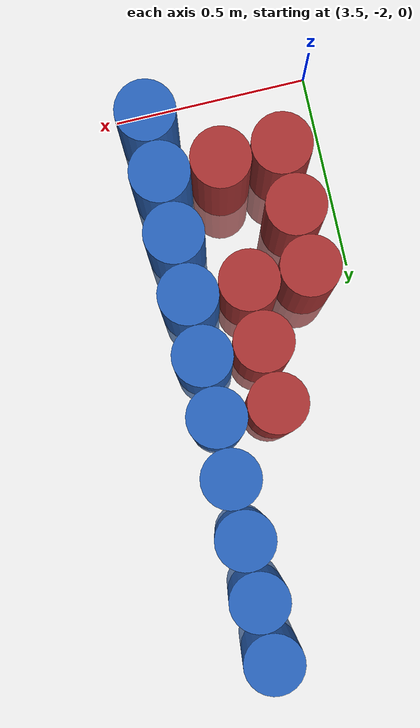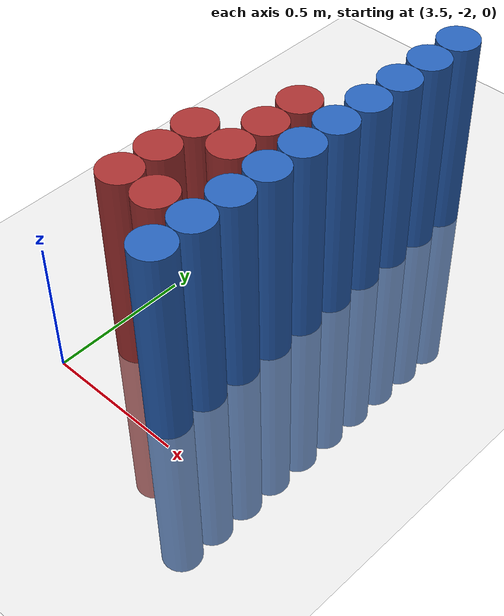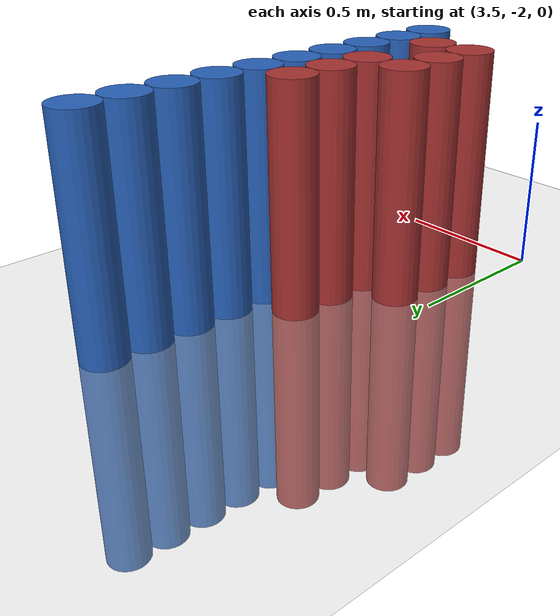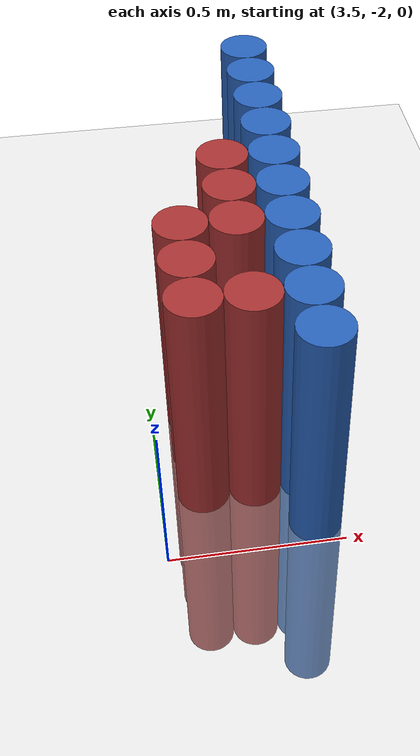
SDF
<sdf version="1.6">
 <world name="default">
  <model name="ground_plane">
   <static>1</static>
   <link name="link">
    <collision name="collision">
     <geometry><plane><normal>0 0 1</normal><size>100 100</size></plane></geometry>
     <surface><friction><ode><mu>100</mu><mu2>50</mu2></ode></friction></surface>
    </collision>
    <visual name="visual">
     <cast_shadows>0</cast_shadows>
     <geometry><plane><normal>0 0 1</normal><size>100 100</size></plane></geometry>
     <material>
      <script><uri>file://media/materials/scripts/gazebo.material</uri><name>Gazebo/Grey</name></script>
     </material>
    </visual>
   </link>
  </model>
  <model name="unit_cylinder_88">
   <static>1</static>
   <pose>3.925000 -1.925000 0.000000 0.000000 0.000000 0.000000</pose>
   <link name="link">
    <inertial>
     <mass>1</mass>
     <inertia><ixx>0.145833</ixx><ixy>0</ixy><ixz>0</ixz><iyy>0.145833</iyy><iyz>0</iyz><izz>0.125</izz></inertia>
    </inertial>
    <collision name="collision">
     <geometry><cylinder><radius>0.075000</radius><length>1.5</length></cylinder></geometry>
    </collision>
    <visual name="visual">
     <geometry><cylinder><radius>0.075000</radius><length>1.5</length></cylinder></geometry>
     <material>
      <ambient>0.152000 0.379000 0.720000 1</ambient>
      <diffuse>0.152000 0.379000 0.720000 1</diffuse>
     </material>
     <material>
      <script><name>Gazebo/Grey</name><uri>file://media/materials/scripts/gazebo.material</uri></script>
     </material>
    </visual>
   </link>
  </model>
  <model name="unit_cylinder_90">
   <static>1</static>
   <pose>3.925000 -1.775000 0.000000 0.000000 0.000000 0.000000</pose>
   <link name="link">
    <inertial>
     <mass>1</mass>
     <inertia><ixx>0.145833</ixx><ixy>0</ixy><ixz>0</ixz><iyy>0.145833</iyy><iyz>0</iyz><izz>0.125</izz></inertia>
    </inertial>
    <collision name="collision">
     <geometry><cylinder><radius>0.075000</radius><length>1.5</length></cylinder></geometry>
    </collision>
    <visual name="visual">
     <geometry><cylinder><radius>0.075000</radius><length>1.5</length></cylinder></geometry>
     <material>
      <ambient>0.152000 0.379000 0.720000 1</ambient>
      <diffuse>0.152000 0.379000 0.720000 1</diffuse>
     </material>
     <material>
      <script><name>Gazebo/Grey</name><uri>file://media/materials/scripts/gazebo.material</uri></script>
     </material>
    </visual>
   </link>
  </model>
  <model name="unit_cylinder_92">
   <static>1</static>
   <pose>3.925000 -1.625000 0.000000 0.000000 0.000000 0.000000</pose>
   <link name="link">
    <inertial>
     <mass>1</mass>
     <inertia><ixx>0.145833</ixx><ixy>0</ixy><ixz>0</ixz><iyy>0.145833</iyy><iyz>0</iyz><izz>0.125</izz></inertia>
    </inertial>
    <collision name="collision">
     <geometry><cylinder><radius>0.075000</radius><length>1.5</length></cylinder></geometry>
    </collision>
    <visual name="visual">
     <geometry><cylinder><radius>0.075000</radius><length>1.5</length></cylinder></geometry>
     <material>
      <ambient>0.152000 0.379000 0.720000 1</ambient>
      <diffuse>0.152000 0.379000 0.720000 1</diffuse>
     </material>
     <material>
      <script><name>Gazebo/Grey</name><uri>file://media/materials/scripts/gazebo.material</uri></script>
     </material>
    </visual>
   </link>
  </model>
  <model name="unit_cylinder_94">
   <static>1</static>
   <pose>3.925000 -1.475000 0.000000 0.000000 0.000000 0.000000</pose>
   <link name="link">
    <inertial>
     <mass>1</mass>
     <inertia><ixx>0.145833</ixx><ixy>0</ixy><ixz>0</ixz><iyy>0.145833</iyy><iyz>0</iyz><izz>0.125</izz></inertia>
    </inertial>
    <collision name="collision">
     <geometry><cylinder><radius>0.075000</radius><length>1.5</length></cylinder></geometry>
    </collision>
    <visual name="visual">
     <geometry><cylinder><radius>0.075000</radius><length>1.5</length></cylinder></geometry>
     <material>
      <ambient>0.152000 0.379000 0.720000 1</ambient>
      <diffuse>0.152000 0.379000 0.720000 1</diffuse>
     </material>
     <material>
      <script><name>Gazebo/Grey</name><uri>file://media/materials/scripts/gazebo.material</uri></script>
     </material>
    </visual>
   </link>
  </model>
  <model name="unit_cylinder_96">
   <static>1</static>
   <pose>3.925000 -1.325000 0.000000 0.000000 0.000000 0.000000</pose>
   <link name="link">
    <inertial>
     <mass>1</mass>
     <inertia><ixx>0.145833</ixx><ixy>0</ixy><ixz>0</ixz><iyy>0.145833</iyy><iyz>0</iyz><izz>0.125</izz></inertia>
    </inertial>
    <collision name="collision">
     <geometry><cylinder><radius>0.075000</radius><length>1.5</length></cylinder></geometry>
    </collision>
    <visual name="visual">
     <geometry><cylinder><radius>0.075000</radius><length>1.5</length></cylinder></geometry>
     <material>
      <ambient>0.152000 0.379000 0.720000 1</ambient>
      <diffuse>0.152000 0.379000 0.720000 1</diffuse>
     </material>
     <material>
      <script><name>Gazebo/Grey</name><uri>file://media/materials/scripts/gazebo.material</uri></script>
     </material>
    </visual>
   </link>
  </model>
  <model name="unit_cylinder_98">
   <static>1</static>
   <pose>3.925000 -1.175000 0.000000 0.000000 0.000000 0.000000</pose>
   <link name="link">
    <inertial>
     <mass>1</mass>
     <inertia><ixx>0.145833</ixx><ixy>0</ixy><ixz>0</ixz><iyy>0.145833</iyy><iyz>0</iyz><izz>0.125</izz></inertia>
    </inertial>
    <collision name="collision">
     <geometry><cylinder><radius>0.075000</radius><length>1.5</length></cylinder></geometry>
    </collision>
    <visual name="visual">
     <geometry><cylinder><radius>0.075000</radius><length>1.5</length></cylinder></geometry>
     <material>
      <ambient>0.152000 0.379000 0.720000 1</ambient>
      <diffuse>0.152000 0.379000 0.720000 1</diffuse>
     </material>
     <material>
      <script><name>Gazebo/Grey</name><uri>file://media/materials/scripts/gazebo.material</uri></script>
     </material>
    </visual>
   </link>
  </model>
  <model name="unit_cylinder_100">
   <static>1</static>
   <pose>3.925000 -1.025000 0.000000 0.000000 0.000000 0.000000</pose>
   <link name="link">
    <inertial>
     <mass>1</mass>
     <inertia><ixx>0.145833</ixx><ixy>0</ixy><ixz>0</ixz><iyy>0.145833</iyy><iyz>0</iyz><izz>0.125</izz></inertia>
    </inertial>
    <collision name="collision">
     <geometry><cylinder><radius>0.075000</radius><length>1.5</length></cylinder></geometry>
    </collision>
    <visual name="visual">
     <geometry><cylinder><radius>0.075000</radius><length>1.5</length></cylinder></geometry>
     <material>
      <ambient>0.152000 0.379000 0.720000 1</ambient>
      <diffuse>0.152000 0.379000 0.720000 1</diffuse>
     </material>
     <material>
      <script><name>Gazebo/Grey</name><uri>file://media/materials/scripts/gazebo.material</uri></script>
     </material>
    </visual>
   </link>
  </model>
  <model name="unit_cylinder_102">
   <static>1</static>
   <pose>3.925000 -0.875000 0.000000 0.000000 0.000000 0.000000</pose>
   <link name="link">
    <inertial>
     <mass>1</mass>
     <inertia><ixx>0.145833</ixx><ixy>0</ixy><ixz>0</ixz><iyy>0.145833</iyy><iyz>0</iyz><izz>0.125</izz></inertia>
    </inertial>
    <collision name="collision">
     <geometry><cylinder><radius>0.075000</radius><length>1.5</length></cylinder></geometry>
    </collision>
    <visual name="visual">
     <geometry><cylinder><radius>0.075000</radius><length>1.5</length></cylinder></geometry>
     <material>
      <ambient>0.152000 0.379000 0.720000 1</ambient>
      <diffuse>0.152000 0.379000 0.720000 1</diffuse>
     </material>
     <material>
      <script><name>Gazebo/Grey</name><uri>file://media/materials/scripts/gazebo.material</uri></script>
     </material>
    </visual>
   </link>
  </model>
  <model name="unit_cylinder_104">
   <static>1</static>
   <pose>3.925000 -0.725000 0.000000 0.000000 0.000000 0.000000</pose>
   <link name="link">
    <inertial>
     <mass>1</mass>
     <inertia><ixx>0.145833</ixx><ixy>0</ixy><ixz>0</ixz><iyy>0.145833</iyy><iyz>0</iyz><izz>0.125</izz></inertia>
    </inertial>
    <collision name="collision">
     <geometry><cylinder><radius>0.075000</radius><length>1.5</length></cylinder></geometry>
    </collision>
    <visual name="visual">
     <geometry><cylinder><radius>0.075000</radius><length>1.5</length></cylinder></geometry>
     <material>
      <ambient>0.152000 0.379000 0.720000 1</ambient>
      <diffuse>0.152000 0.379000 0.720000 1</diffuse>
     </material>
     <material>
      <script><name>Gazebo/Grey</name><uri>file://media/materials/scripts/gazebo.material</uri></script>
     </material>
    </visual>
   </link>
  </model>
  <model name="unit_cylinder_106">
   <static>1</static>
   <pose>3.925000 -0.575000 0.000000 0.000000 0.000000 0.000000</pose>
   <link name="link">
    <inertial>
     <mass>1</mass>
     <inertia><ixx>0.145833</ixx><ixy>0</ixy><ixz>0</ixz><iyy>0.145833</iyy><iyz>0</iyz><izz>0.125</izz></inertia>
    </inertial>
    <collision name="collision">
     <geometry><cylinder><radius>0.075000</radius><length>1.5</length></cylinder></geometry>
    </collision>
    <visual name="visual">
     <geometry><cylinder><radius>0.075000</radius><length>1.5</length></cylinder></geometry>
     <material>
      <ambient>0.152000 0.379000 0.720000 1</ambient>
      <diffuse>0.152000 0.379000 0.720000 1</diffuse>
     </material>
     <material>
      <script><name>Gazebo/Grey</name><uri>file://media/materials/scripts/gazebo.material</uri></script>
     </material>
    </visual>
   </link>
  </model>
  <model name="unit_cylinder_460">
   <static>1</static>
   <pose>3.625000 -1.775000 0.000000 0.000000 0.000000 0.000000</pose>
   <link name="link">
    <inertial>
     <mass>1</mass>
     <inertia><ixx>0.145833</ixx><ixy>0</ixy><ixz>0</ixz><iyy>0.145833</iyy><iyz>0</iyz><izz>0.125</izz></inertia>
    </inertial>
    <collision name="collision">
     <geometry><cylinder><radius>0.075000</radius><length>1.5</length></cylinder></geometry>
    </collision>
    <visual name="visual">
     <geometry><cylinder><radius>0.075000</radius><length>1.5</length></cylinder></geometry>
     <material>
      <ambient>0.648000 0.192000 0.192000 1</ambient>
      <diffuse>0.648000 0.192000 0.192000 1</diffuse>
     </material>
     <material>
      <script><name>Gazebo/Grey</name><uri>file://media/materials/scripts/gazebo.material</uri></script>
     </material>
    </visual>
   </link>
  </model>
  <model name="unit_cylinder_461">
   <static>1</static>
   <pose>3.625000 -1.625000 0.000000 0.000000 0.000000 0.000000</pose>
   <link name="link">
    <inertial>
     <mass>1</mass>
     <inertia><ixx>0.145833</ixx><ixy>0</ixy><ixz>0</ixz><iyy>0.145833</iyy><iyz>0</iyz><izz>0.125</izz></inertia>
    </inertial>
    <collision name="collision">
     <geometry><cylinder><radius>0.075000</radius><length>1.5</length></cylinder></geometry>
    </collision>
    <visual name="visual">
     <geometry><cylinder><radius>0.075000</radius><length>1.5</length></cylinder></geometry>
     <material>
      <ambient>0.648000 0.192000 0.192000 1</ambient>
      <diffuse>0.648000 0.192000 0.192000 1</diffuse>
     </material>
     <material>
      <script><name>Gazebo/Grey</name><uri>file://media/materials/scripts/gazebo.material</uri></script>
     </material>
    </visual>
   </link>
  </model>
  <model name="unit_cylinder_462">
   <static>1</static>
   <pose>3.625000 -1.475000 0.000000 0.000000 0.000000 0.000000</pose>
   <link name="link">
    <inertial>
     <mass>1</mass>
     <inertia><ixx>0.145833</ixx><ixy>0</ixy><ixz>0</ixz><iyy>0.145833</iyy><iyz>0</iyz><izz>0.125</izz></inertia>
    </inertial>
    <collision name="collision">
     <geometry><cylinder><radius>0.075000</radius><length>1.5</length></cylinder></geometry>
    </collision>
    <visual name="visual">
     <geometry><cylinder><radius>0.075000</radius><length>1.5</length></cylinder></geometry>
     <material>
      <ambient>0.648000 0.192000 0.192000 1</ambient>
      <diffuse>0.648000 0.192000 0.192000 1</diffuse>
     </material>
     <material>
      <script><name>Gazebo/Grey</name><uri>file://media/materials/scripts/gazebo.material</uri></script>
     </material>
    </visual>
   </link>
  </model>
  <model name="unit_cylinder_467">
   <static>1</static>
   <pose>3.775000 -1.775000 0.000000 0.000000 0.000000 0.000000</pose>
   <link name="link">
    <inertial>
     <mass>1</mass>
     <inertia><ixx>0.145833</ixx><ixy>0</ixy><ixz>0</ixz><iyy>0.145833</iyy><iyz>0</iyz><izz>0.125</izz></inertia>
    </inertial>
    <collision name="collision">
     <geometry><cylinder><radius>0.075000</radius><length>1.5</length></cylinder></geometry>
    </collision>
    <visual name="visual">
     <geometry><cylinder><radius>0.075000</radius><length>1.5</length></cylinder></geometry>
     <material>
      <ambient>0.648000 0.192000 0.192000 1</ambient>
      <diffuse>0.648000 0.192000 0.192000 1</diffuse>
     </material>
     <material>
      <script><name>Gazebo/Grey</name><uri>file://media/materials/scripts/gazebo.material</uri></script>
     </material>
    </visual>
   </link>
  </model>
  <model name="unit_cylinder_468">
   <static>1</static>
   <pose>3.775000 -1.475000 0.000000 0.000000 0.000000 0.000000</pose>
   <link name="link">
    <inertial>
     <mass>1</mass>
     <inertia><ixx>0.145833</ixx><ixy>0</ixy><ixz>0</ixz><iyy>0.145833</iyy><iyz>0</iyz><izz>0.125</izz></inertia>
    </inertial>
    <collision name="collision">
     <geometry><cylinder><radius>0.075000</radius><length>1.5</length></cylinder></geometry>
    </collision>
    <visual name="visual">
     <geometry><cylinder><radius>0.075000</radius><length>1.5</length></cylinder></geometry>
     <material>
      <ambient>0.648000 0.192000 0.192000 1</ambient>
      <diffuse>0.648000 0.192000 0.192000 1</diffuse>
     </material>
     <material>
      <script><name>Gazebo/Grey</name><uri>file://media/materials/scripts/gazebo.material</uri></script>
     </material>
    </visual>
   </link>
  </model>
  <model name="unit_cylinder_469">
   <static>1</static>
   <pose>3.775000 -1.325000 0.000000 0.000000 0.000000 0.000000</pose>
   <link name="link">
    <inertial>
     <mass>1</mass>
     <inertia><ixx>0.145833</ixx><ixy>0</ixy><ixz>0</ixz><iyy>0.145833</iyy><iyz>0</iyz><izz>0.125</izz></inertia>
    </inertial>
    <collision name="collision">
     <geometry><cylinder><radius>0.075000</radius><length>1.5</length></cylinder></geometry>
    </collision>
    <visual name="visual">
     <geometry><cylinder><radius>0.075000</radius><length>1.5</length></cylinder></geometry>
     <material>
      <ambient>0.648000 0.192000 0.192000 1</ambient>
      <diffuse>0.648000 0.192000 0.192000 1</diffuse>
     </material>
     <material>
      <script><name>Gazebo/Grey</name><uri>file://media/materials/scripts/gazebo.material</uri></script>
     </material>
    </visual>
   </link>
  </model>
  <model name="unit_cylinder_470">
   <static>1</static>
   <pose>3.775000 -1.175000 0.000000 0.000000 0.000000 0.000000</pose>
   <link name="link">
    <inertial>
     <mass>1</mass>
     <inertia><ixx>0.145833</ixx><ixy>0</ixy><ixz>0</ixz><iyy>0.145833</iyy><iyz>0</iyz><izz>0.125</izz></inertia>
    </inertial>
    <collision name="collision">
     <geometry><cylinder><radius>0.075000</radius><length>1.5</length></cylinder></geometry>
    </collision>
    <visual name="visual">
     <geometry><cylinder><radius>0.075000</radius><length>1.5</length></cylinder></geometry>
     <material>
      <ambient>0.648000 0.192000 0.192000 1</ambient>
      <diffuse>0.648000 0.192000 0.192000 1</diffuse>
     </material>
     <material>
      <script><name>Gazebo/Grey</name><uri>file://media/materials/scripts/gazebo.material</uri></script>
     </material>
    </visual>
   </link>
  </model>
  <model name="unit_cylinder_493">
   <static>1</static>
   <pose>3.925000 -1.925000 0.000000 0.000000 0.000000 0.000000</pose>
   <link name="link">
    <inertial>
     <mass>1</mass>
     <inertia><ixx>0.145833</ixx><ixy>0</ixy><ixz>0</ixz><iyy>0.145833</iyy><iyz>0</iyz><izz>0.125</izz></inertia>
    </inertial>
    <collision name="collision">
     <geometry><cylinder><radius>0.075000</radius><length>1.5</length></cylinder></geometry>
    </collision>
    <visual name="visual">
     <geometry><cylinder><radius>0.075000</radius><length>1.5</length></cylinder></geometry>
     <material>
      <ambient>0.152000 0.379000 0.720000 1</ambient>
      <diffuse>0.152000 0.379000 0.720000 1</diffuse>
     </material>
     <material>
      <script><name>Gazebo/Grey</name><uri>file://media/materials/scripts/gazebo.material</uri></script>
     </material>
    </visual>
   </link>
  </model>
  <model name="unit_cylinder_494">
   <static>1</static>
   <pose>3.925000 -1.775000 0.000000 0.000000 0.000000 0.000000</pose>
   <link name="link">
    <inertial>
     <mass>1</mass>
     <inertia><ixx>0.145833</ixx><ixy>0</ixy><ixz>0</ixz><iyy>0.145833</iyy><iyz>0</iyz><izz>0.125</izz></inertia>
    </inertial>
    <collision name="collision">
     <geometry><cylinder><radius>0.075000</radius><length>1.5</length></cylinder></geometry>
    </collision>
    <visual name="visual">
     <geometry><cylinder><radius>0.075000</radius><length>1.5</length></cylinder></geometry>
     <material>
      <ambient>0.152000 0.379000 0.720000 1</ambient>
      <diffuse>0.152000 0.379000 0.720000 1</diffuse>
     </material>
     <material>
      <script><name>Gazebo/Grey</name><uri>file://media/materials/scripts/gazebo.material</uri></script>
     </material>
    </visual>
   </link>
  </model>
  <model name="unit_cylinder_495">
   <static>1</static>
   <pose>3.925000 -1.625000 0.000000 0.000000 0.000000 0.000000</pose>
   <link name="link">
    <inertial>
     <mass>1</mass>
     <inertia><ixx>0.145833</ixx><ixy>0</ixy><ixz>0</ixz><iyy>0.145833</iyy><iyz>0</iyz><izz>0.125</izz></inertia>
    </inertial>
    <collision name="collision">
     <geometry><cylinder><radius>0.075000</radius><length>1.5</length></cylinder></geometry>
    </collision>
    <visual name="visual">
     <geometry><cylinder><radius>0.075000</radius><length>1.5</length></cylinder></geometry>
     <material>
      <ambient>0.152000 0.379000 0.720000 1</ambient>
      <diffuse>0.152000 0.379000 0.720000 1</diffuse>
     </material>
     <material>
      <script><name>Gazebo/Grey</name><uri>file://media/materials/scripts/gazebo.material</uri></script>
     </material>
    </visual>
   </link>
  </model>
  <model name="unit_cylinder_496">
   <static>1</static>
   <pose>3.925000 -1.475000 0.000000 0.000000 0.000000 0.000000</pose>
   <link name="link">
    <inertial>
     <mass>1</mass>
     <inertia><ixx>0.145833</ixx><ixy>0</ixy><ixz>0</ixz><iyy>0.145833</iyy><iyz>0</iyz><izz>0.125</izz></inertia>
    </inertial>
    <collision name="collision">
     <geometry><cylinder><radius>0.075000</radius><length>1.5</length></cylinder></geometry>
    </collision>
    <visual name="visual">
     <geometry><cylinder><radius>0.075000</radius><length>1.5</length></cylinder></geometry>
     <material>
      <ambient>0.152000 0.379000 0.720000 1</ambient>
      <diffuse>0.152000 0.379000 0.720000 1</diffuse>
     </material>
     <material>
      <script><name>Gazebo/Grey</name><uri>file://media/materials/scripts/gazebo.material</uri></script>
     </material>
    </visual>
   </link>
  </model>
  <model name="unit_cylinder_497">
   <static>1</static>
   <pose>3.925000 -1.325000 0.000000 0.000000 0.000000 0.000000</pose>
   <link name="link">
    <inertial>
     <mass>1</mass>
     <inertia><ixx>0.145833</ixx><ixy>0</ixy><ixz>0</ixz><iyy>0.145833</iyy><iyz>0</iyz><izz>0.125</izz></inertia>
    </inertial>
    <collision name="collision">
     <geometry><cylinder><radius>0.075000</radius><length>1.5</length></cylinder></geometry>
    </collision>
    <visual name="visual">
     <geometry><cylinder><radius>0.075000</radius><length>1.5</length></cylinder></geometry>
     <material>
      <ambient>0.152000 0.379000 0.720000 1</ambient>
      <diffuse>0.152000 0.379000 0.720000 1</diffuse>
     </material>
     <material>
      <script><name>Gazebo/Grey</name><uri>file://media/materials/scripts/gazebo.material</uri></script>
     </material>
    </visual>
   </link>
  </model>
  <model name="unit_cylinder_498">
   <static>1</static>
   <pose>3.925000 -1.175000 0.000000 0.000000 0.000000 0.000000</pose>
   <link name="link">
    <inertial>
     <mass>1</mass>
     <inertia><ixx>0.145833</ixx><ixy>0</ixy><ixz>0</ixz><iyy>0.145833</iyy><iyz>0</iyz><izz>0.125</izz></inertia>
    </inertial>
    <collision name="collision">
     <geometry><cylinder><radius>0.075000</radius><length>1.5</length></cylinder></geometry>
    </collision>
    <visual name="visual">
     <geometry><cylinder><radius>0.075000</radius><length>1.5</length></cylinder></geometry>
     <material>
      <ambient>0.152000 0.379000 0.720000 1</ambient>
      <diffuse>0.152000 0.379000 0.720000 1</diffuse>
     </material>
     <material>
      <script><name>Gazebo/Grey</name><uri>file://media/materials/scripts/gazebo.material</uri></script>
     </material>
    </visual>
   </link>
  </model>
  <model name="unit_cylinder_499">
   <static>1</static>
   <pose>3.925000 -1.025000 0.000000 0.000000 0.000000 0.000000</pose>
   <link name="link">
    <inertial>
     <mass>1</mass>
     <inertia><ixx>0.145833</ixx><ixy>0</ixy><ixz>0</ixz><iyy>0.145833</iyy><iyz>0</iyz><izz>0.125</izz></inertia>
    </inertial>
    <collision name="collision">
     <geometry><cylinder><radius>0.075000</radius><length>1.5</length></cylinder></geometry>
    </collision>
    <visual name="visual">
     <geometry><cylinder><radius>0.075000</radius><length>1.5</length></cylinder></geometry>
     <material>
      <ambient>0.152000 0.379000 0.720000 1</ambient>
      <diffuse>0.152000 0.379000 0.720000 1</diffuse>
     </material>
     <material>
      <script><name>Gazebo/Grey</name><uri>file://media/materials/scripts/gazebo.material</uri></script>
     </material>
    </visual>
   </link>
  </model>
  <model name="unit_cylinder_500">
   <static>1</static>
   <pose>3.925000 -0.875000 0.000000 0.000000 0.000000 0.000000</pose>
   <link name="link">
    <inertial>
     <mass>1</mass>
     <inertia><ixx>0.145833</ixx><ixy>0</ixy><ixz>0</ixz><iyy>0.145833</iyy><iyz>0</iyz><izz>0.125</izz></inertia>
    </inertial>
    <collision name="collision">
     <geometry><cylinder><radius>0.075000</radius><length>1.5</length></cylinder></geometry>
    </collision>
    <visual name="visual">
     <geometry><cylinder><radius>0.075000</radius><length>1.5</length></cylinder></geometry>
     <material>
      <ambient>0.152000 0.379000 0.720000 1</ambient>
      <diffuse>0.152000 0.379000 0.720000 1</diffuse>
     </material>
     <material>
      <script><name>Gazebo/Grey</name><uri>file://media/materials/scripts/gazebo.material</uri></script>
     </material>
    </visual>
   </link>
  </model>
  <model name="unit_cylinder_501">
   <static>1</static>
   <pose>3.925000 -0.725000 0.000000 0.000000 0.000000 0.000000</pose>
   <link name="link">
    <inertial>
     <mass>1</mass>
     <inertia><ixx>0.145833</ixx><ixy>0</ixy><ixz>0</ixz><iyy>0.145833</iyy><iyz>0</iyz><izz>0.125</izz></inertia>
    </inertial>
    <collision name="collision">
     <geometry><cylinder><radius>0.075000</radius><length>1.5</length></cylinder></geometry>
    </collision>
    <visual name="visual">
     <geometry><cylinder><radius>0.075000</radius><length>1.5</length></cylinder></geometry>
     <material>
      <ambient>0.152000 0.379000 0.720000 1</ambient>
      <diffuse>0.152000 0.379000 0.720000 1</diffuse>
     </material>
     <material>
      <script><name>Gazebo/Grey</name><uri>file://media/materials/scripts/gazebo.material</uri></script>
     </material>
    </visual>
   </link>
  </model>
  <model name="unit_cylinder_502">
   <static>1</static>
   <pose>3.925000 -0.575000 0.000000 0.000000 0.000000 0.000000</pose>
   <link name="link">
    <inertial>
     <mass>1</mass>
     <inertia><ixx>0.145833</ixx><ixy>0</ixy><ixz>0</ixz><iyy>0.145833</iyy><iyz>0</iyz><izz>0.125</izz></inertia>
    </inertial>
    <collision name="collision">
     <geometry><cylinder><radius>0.075000</radius><length>1.5</length></cylinder></geometry>
    </collision>
    <visual name="visual">
     <geometry><cylinder><radius>0.075000</radius><length>1.5</length></cylinder></geometry>
     <material>
      <ambient>0.152000 0.379000 0.720000 1</ambient>
      <diffuse>0.152000 0.379000 0.720000 1</diffuse>
     </material>
     <material>
      <script><name>Gazebo/Grey</name><uri>file://media/materials/scripts/gazebo.material</uri></script>
     </material>
    </visual>
   </link>
  </model>
 </world>
</sdf>
